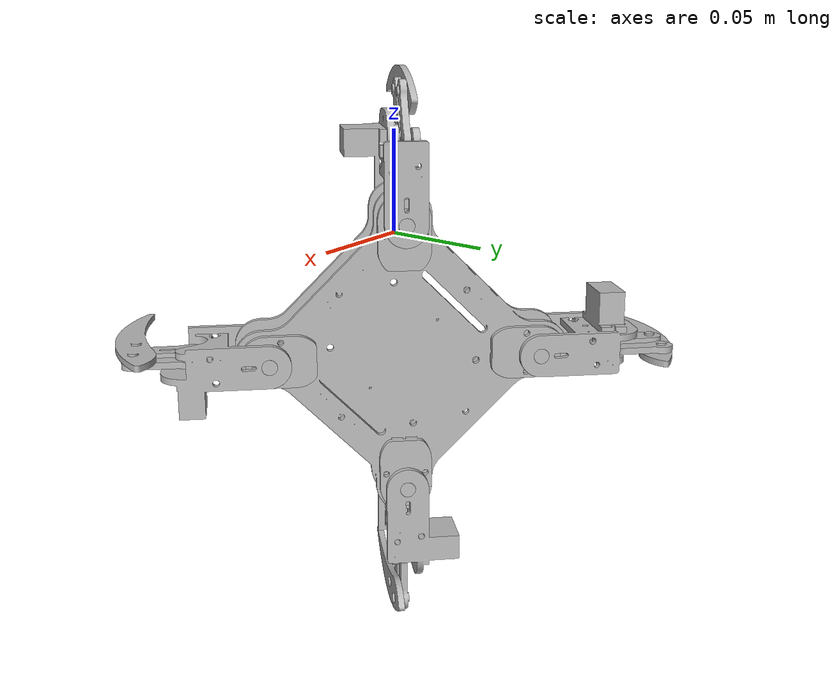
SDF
<?xml version="1.0" ?>
<sdf version="1.6">
	<model name="quadruped">
		<link name="quadruped_body">
			<self_collide>false</self_collide>
			<pose frame="">0.009054617693526444 0.010954550696905674 -0.05424821339808461 0.0 -0.0 0.0</pose>
			<inertial>
				<pose frame="">0.0 0.0 0.0 0 0 0</pose>
				<mass>0.0935834215818616</mass>
				<inertia>
					<ixx>0.00045713170993534694</ixx>
					<ixy>4.052495762946136e-05</ixy>
					<ixz>4.955015390422573e-05</ixz>
					<iyy>0.00045300290747356806</iyy>
					<iyz>6.061278298104605e-05</iyz>
					<izz>0.00013966679884245075</izz>
				</inertia>
			</inertial>
			<collision name="quadruped_body_collision">
				<geometry>
					<mesh>
						<uri>model://quadruped/meshes/CAD/quadruped_body.stl</uri>
						<scale>0.001 0.001 0.001</scale>
					</mesh>
				</geometry>
			</collision>
			<visual name="quadruped_body_visual">
				<geometry>
					<mesh>
						<uri>model://quadruped/meshes/CAD/quadruped_body.stl</uri>
						<scale>0.001 0.001 0.001</scale>
					</mesh>
				</geometry>
			</visual>
		</link>
		<link name="hip_servo_servo_mount_1">
			<self_collide>false</self_collide>
			<pose frame="">0.012890375611817766 0.014871195556350914 0.005375114470529469 0.0 -0.0 0.0</pose>
			<inertial>
				<pose frame="">0.0 0.0 0.0 0 0 0</pose>
				<mass>0.013632986173772196</mass>
				<inertia>
					<ixx>4.770315520251754e-06</ixx>
					<ixy>-2.8290059779284048e-06</ixy>
					<ixz>-9.790741818784368e-07</ixz>
					<iyy>4.022409904501968e-06</iyy>
					<iyz>-1.1249989284580146e-06</iyz>
					<izz>6.305847008255539e-06</izz>
				</inertia>
			</inertial>
			<collision name="hip_servo_servo_mount_1_collision">
				<geometry>
					<mesh>
						<uri>model://quadruped/meshes/CAD/hip_servo_servo_mount_1.stl</uri>
						<scale>0.001 0.001 0.001</scale>
					</mesh>
				</geometry>
			</collision>
			<visual name="hip_servo_servo_mount_1_visual">
				<geometry>
					<mesh>
						<uri>model://quadruped/meshes/CAD/hip_servo_servo_mount_1.stl</uri>
						<scale>0.001 0.001 0.001</scale>
					</mesh>
				</geometry>
			</visual>
		</link>
		<link name="hip_servo_servo_mount_2">
			<self_collide>false</self_collide>
			<pose frame="">-0.02620632332338188 0.059236573256571286 -0.053686074613440805 0.0 -0.0 0.0</pose>
			<inertial>
				<pose frame="">0.0 0.0 0.0 0 0 0</pose>
				<mass>0.013632986173875754</mass>
				<inertia>
					<ixx>8.827411643680424e-05</ixx>
					<ixy>2.1218168598137407e-05</ixy>
					<ixz>-1.9197254904825403e-05</ixz>
					<iyy>4.968616068294264e-05</iyy>
					<iyz>4.3334687147887475e-05</iyz>
					<izz>5.87768823095126e-05</izz>
				</inertia>
			</inertial>
			<collision name="hip_servo_servo_mount_2_collision">
				<geometry>
					<mesh>
						<uri>model://quadruped/meshes/CAD/hip_servo_servo_mount_2.stl</uri>
						<scale>0.001 0.001 0.001</scale>
					</mesh>
				</geometry>
			</collision>
			<visual name="hip_servo_servo_mount_2_visual">
				<geometry>
					<mesh>
						<uri>model://quadruped/meshes/CAD/hip_servo_servo_mount_2.stl</uri>
						<scale>0.001 0.001 0.001</scale>
					</mesh>
				</geometry>
			</visual>
		</link>
		<link name="hip_servo_servo_mount_3">
			<self_collide>false</self_collide>
			<pose frame="">0.018095238187563277 0.019844180002299153 -0.11277707275426496 0.0 -0.0 0.0</pose>
			<inertial>
				<pose frame="">0.0 0.0 0.0 0 0 0</pose>
				<mass>0.013632986173729874</mass>
				<inertia>
					<ixx>0.00018011641699017185</ixx>
					<ixy>-5.117862140018571e-06</ixy>
					<ixz>2.7865925192958343e-05</ixz>
					<iyy>0.0001792139882746836</iyy>
					<iyz>3.055380216979061e-05</iyz>
					<izz>1.0871770428207131e-05</izz>
				</inertia>
			</inertial>
			<collision name="hip_servo_servo_mount_3_collision">
				<geometry>
					<mesh>
						<uri>model://quadruped/meshes/CAD/hip_servo_servo_mount_3.stl</uri>
						<scale>0.001 0.001 0.001</scale>
					</mesh>
				</geometry>
			</collision>
			<visual name="hip_servo_servo_mount_3_visual">
				<geometry>
					<mesh>
						<uri>model://quadruped/meshes/CAD/hip_servo_servo_mount_3.stl</uri>
						<scale>0.001 0.001 0.001</scale>
					</mesh>
				</geometry>
			</visual>
		</link>
		<link name="hip_servo_servo_mount_4">
			<self_collide>false</self_collide>
			<pose frame="">0.05725081501790624 -0.024588009958613738 -0.0536269405918244 0.0 -0.0 0.0</pose>
			<inertial>
				<pose frame="">0.0 0.0 0.0 0 0 0</pose>
				<mass>0.013632986173875919</mass>
				<inertia>
					<ixx>4.847956572880788e-05</ixx>
					<ixy>1.924611994008176e-05</ixy>
					<ixz>4.183404976019748e-05</ixz>
					<iyy>8.50335336726935e-05</iyy>
					<iyz>-1.7992094998200576e-05</iyz>
					<izz>5.450269005330134e-05</izz>
				</inertia>
			</inertial>
			<collision name="hip_servo_servo_mount_4_collision">
				<geometry>
					<mesh>
						<uri>model://quadruped/meshes/CAD/hip_servo_servo_mount_4.stl</uri>
						<scale>0.001 0.001 0.001</scale>
					</mesh>
				</geometry>
			</collision>
			<visual name="hip_servo_servo_mount_4_visual">
				<geometry>
					<mesh>
						<uri>model://quadruped/meshes/CAD/hip_servo_servo_mount_4.stl</uri>
						<scale>0.001 0.001 0.001</scale>
					</mesh>
				</geometry>
			</visual>
		</link>
		<link name="thigh_1">
			<self_collide>false</self_collide>
			<pose frame="">0.004842947358440601 0.004025416538531608 0.03352698125834973 0.0 -0.0 0.0</pose>
			<inertial>
				<pose frame="">0.0 0.0 0.0 0 0 0</pose>
				<mass>0.05521421604479793</mass>
				<inertia>
					<ixx>8.12142496090186e-05</ixx>
					<ixy>-4.289284220261144e-06</ixy>
					<ixz>-1.2997402871583983e-05</ixz>
					<iyy>8.197817458363166e-05</iyy>
					<iyz>-8.580936505269728e-06</iyz>
					<izz>1.7016506462837022e-05</izz>
				</inertia>
			</inertial>
			<collision name="thigh_1_collision">
				<geometry>
					<mesh>
						<uri>model://quadruped/meshes/CAD/thigh_1.stl</uri>
						<scale>0.001 0.001 0.001</scale>
					</mesh>
				</geometry>
			</collision>
			<visual name="thigh_1_visual">
				<geometry>
					<mesh>
						<uri>model://quadruped/meshes/CAD/thigh_1.stl</uri>
						<scale>0.001 0.001 0.001</scale>
					</mesh>
				</geometry>
			</visual>
		</link>
		<link name="thigh_2">
			<self_collide>false</self_collide>
			<pose frame="">-0.054910586133422846 0.07145614961108687 -0.052393391524586094 0.0 -0.0 0.0</pose>
			<inertial>
				<pose frame="">0.0 0.0 0.0 0 0 0</pose>
				<mass>0.05521421601019442</mass>
				<inertia>
					<ixx>0.00045206492163734534</ixx>
					<ixy>0.00021641294327883327</ixy>
					<ixz>-0.00015776301586801415</ixz>
					<iyy>0.0003295821695272492</iyy>
					<iyz>0.00020462149987292915</iyz>
					<izz>0.00046999421699915367</izz>
				</inertia>
			</inertial>
			<collision name="thigh_2_collision">
				<geometry>
					<mesh>
						<uri>model://quadruped/meshes/CAD/thigh_2.stl</uri>
						<scale>0.001 0.001 0.001</scale>
					</mesh>
				</geometry>
			</collision>
			<visual name="thigh_2_visual">
				<geometry>
					<mesh>
						<uri>model://quadruped/meshes/CAD/thigh_2.stl</uri>
						<scale>0.001 0.001 0.001</scale>
					</mesh>
				</geometry>
			</visual>
		</link>
		<link name="thigh_3">
			<self_collide>false</self_collide>
			<pose frame="">0.00970961671144424 0.014320953108746983 -0.14234224145240565 0.0 -0.0 0.0</pose>
			<inertial>
				<pose frame="">0.0 0.0 0.0 0 0 0</pose>
				<mass>0.055214216042986965</mass>
				<inertia>
					<ixx>0.0011484291742198435</ixx>
					<ixy>-1.1336606396544214e-05</ixy>
					<ixz>7.744122923151141e-05</ixz>
					<iyy>0.0011415143913118115</iyy>
					<iyz>0.00011651204828828122</iyz>
					<izz>3.2241627968361466e-05</izz>
				</inertia>
			</inertial>
			<collision name="thigh_3_collision">
				<geometry>
					<mesh>
						<uri>model://quadruped/meshes/CAD/thigh_3.stl</uri>
						<scale>0.001 0.001 0.001</scale>
					</mesh>
				</geometry>
			</collision>
			<visual name="thigh_3_visual">
				<geometry>
					<mesh>
						<uri>model://quadruped/meshes/CAD/thigh_3.stl</uri>
						<scale>0.001 0.001 0.001</scale>
					</mesh>
				</geometry>
			</visual>
		</link>
		<link name="thigh_4">
			<self_collide>false</self_collide>
			<pose frame="">0.06951831849474113 -0.053171881524671026 -0.05634433518873474 0.0 -0.0 0.0</pose>
			<inertial>
				<pose frame="">0.0 0.0 0.0 0 0 0</pose>
				<mass>0.05521421601038229</mass>
				<inertia>
					<ixx>0.0003426437411902573</ixx>
					<ixy>0.0002038590127636044</ixy>
					<ixz>0.00021745761572754168</ixz>
					<iyy>0.0004609166183581892</iyy>
					<iyz>-0.00016678770737829675</iyz>
					<izz>0.00044460338465351673</izz>
				</inertia>
			</inertial>
			<collision name="thigh_4_collision">
				<geometry>
					<mesh>
						<uri>model://quadruped/meshes/CAD/thigh_4.stl</uri>
						<scale>0.001 0.001 0.001</scale>
					</mesh>
				</geometry>
			</collision>
			<visual name="thigh_4_visual">
				<geometry>
					<mesh>
						<uri>model://quadruped/meshes/CAD/thigh_4.stl</uri>
						<scale>0.001 0.001 0.001</scale>
					</mesh>
				</geometry>
			</visual>
		</link>
		<link name="servo_arm_1">
			<self_collide>false</self_collide>
			<pose frame="">-0.0038155932955904475 -0.0001595397539787395 0.057327534866425174 0.0 -0.0 0.0</pose>
			<inertial>
				<pose frame="">0.0 0.0 0.0 0 0 0</pose>
				<mass>0.0022438611558734008</mass>
				<inertia>
					<ixx>7.628003161628189e-06</ixx>
					<ixy>-5.708298101394665e-08</ixy>
					<ixz>5.719690192606934e-07</ixz>
					<iyy>7.656776136791976e-06</iyy>
					<iyz>1.0553943572059742e-07</iyz>
					<izz>1.4895110505216374e-07</izz>
				</inertia>
			</inertial>
			<collision name="servo_arm_1_collision">
				<geometry>
					<mesh>
						<uri>model://quadruped/meshes/CAD/servo_arm_1.stl</uri>
						<scale>0.001 0.001 0.001</scale>
					</mesh>
				</geometry>
			</collision>
			<visual name="servo_arm_1_visual">
				<geometry>
					<mesh>
						<uri>model://quadruped/meshes/CAD/servo_arm_1.stl</uri>
						<scale>0.001 0.001 0.001</scale>
					</mesh>
				</geometry>
			</visual>
		</link>
		<link name="leg_parallel_linkage_1">
			<self_collide>false</self_collide>
			<pose frame="">0.008722875425727018 0.012470639676602247 0.058378072879620053 0.0 -0.0 0.0</pose>
			<inertial>
				<pose frame="">0.0 0.0 0.0 0 0 0</pose>
				<mass>0.007982467116690367</mass>
				<inertia>
					<ixx>2.9231818847212213e-05</ixx>
					<ixy>-1.0326589470064662e-06</ixy>
					<ixz>-3.7867951165163097e-06</ixz>
					<iyy>2.8595493348213505e-05</iyy>
					<iyz>-5.530824270769201e-06</iyz>
					<izz>2.192019385321037e-06</izz>
				</inertia>
			</inertial>
			<collision name="leg_parallel_linkage_1_collision">
				<geometry>
					<mesh>
						<uri>model://quadruped/meshes/CAD/leg_parallel_linkage_1.stl</uri>
						<scale>0.001 0.001 0.001</scale>
					</mesh>
				</geometry>
			</collision>
			<visual name="leg_parallel_linkage_1_visual">
				<geometry>
					<mesh>
						<uri>model://quadruped/meshes/CAD/leg_parallel_linkage_1.stl</uri>
						<scale>0.001 0.001 0.001</scale>
					</mesh>
				</geometry>
			</visual>
		</link>
		<link name="rev_1">
			<self_collide>false</self_collide>
			<pose frame="">-0.014956736523691297 -0.006505495167599255 0.06774557776623814 0.0 -0.0 0.0</pose>
			<inertial>
				<pose frame="">0.0 0.0 0.0 0 0 0</pose>
				<mass>0.005624431830191916</mass>
				<inertia>
					<ixx>2.7664699935707817e-05</ixx>
					<ixy>-2.0546124685621124e-06</ixy>
					<ixz>5.702763789707963e-06</ixz>
					<iyy>2.868078623704316e-05</iyy>
					<iyz>2.48239388023016e-06</iyz>
					<izz>4.521308604942144e-06</izz>
				</inertia>
			</inertial>
			<collision name="rev_1_collision">
				<geometry>
					<mesh>
						<uri>model://quadruped/meshes/CAD/rev_1.stl</uri>
						<scale>0.001 0.001 0.001</scale>
					</mesh>
				</geometry>
			</collision>
			<visual name="rev_1_visual">
				<geometry>
					<mesh>
						<uri>model://quadruped/meshes/CAD/rev_1.stl</uri>
						<scale>0.001 0.001 0.001</scale>
					</mesh>
				</geometry>
			</visual>
		</link>
		<link name="leg_parallel_linkage_2">
			<self_collide>false</self_collide>
			<pose frame="">-0.0613832306482158 0.10207701283128444 -0.05461715389430609 0.0 -0.0 0.0</pose>
			<inertial>
				<pose frame="">0.0 0.0 0.0 0 0 0</pose>
				<mass>0.007982467055746728</mass>
				<inertia>
					<ixx>0.00010744877827830509</ixx>
					<ixy>5.0434906825768446e-05</ixy>
					<ixz>-2.6762834491072075e-05</ixz>
					<iyy>5.439145313859798e-05</iyy>
					<iyz>4.450036414485024e-05</iyz>
					<izz>0.00011420136152249155</izz>
				</inertia>
			</inertial>
			<collision name="leg_parallel_linkage_2_collision">
				<geometry>
					<mesh>
						<uri>model://quadruped/meshes/CAD/leg_parallel_linkage_2.stl</uri>
						<scale>0.001 0.001 0.001</scale>
					</mesh>
				</geometry>
			</collision>
			<visual name="leg_parallel_linkage_2_visual">
				<geometry>
					<mesh>
						<uri>model://quadruped/meshes/CAD/leg_parallel_linkage_2.stl</uri>
						<scale>0.001 0.001 0.001</scale>
					</mesh>
				</geometry>
			</visual>
		</link>
		<link name="servo_arm_2">
			<self_collide>false</self_collide>
			<pose frame="">-0.07403096483651968 0.08959456706172894 -0.055596059476907586 0.0 -0.0 0.0</pose>
			<inertial>
				<pose frame="">0.0 0.0 0.0 0 0 0</pose>
				<mass>0.00224386113073181</mass>
				<inertia>
					<ixx>2.5096354128403615e-05</ixx>
					<ixy>1.5006939654397603e-05</ixy>
					<ixz>-9.23425417836217e-06</ixz>
					<iyy>1.9396706507812125e-05</iyy>
					<iyz>1.1173600946845037e-05</iyz>
					<izz>3.06168814488621e-05</izz>
				</inertia>
			</inertial>
			<collision name="servo_arm_2_collision">
				<geometry>
					<mesh>
						<uri>model://quadruped/meshes/CAD/servo_arm_2.stl</uri>
						<scale>0.001 0.001 0.001</scale>
					</mesh>
				</geometry>
			</collision>
			<visual name="servo_arm_2_visual">
				<geometry>
					<mesh>
						<uri>model://quadruped/meshes/CAD/servo_arm_2.stl</uri>
						<scale>0.001 0.001 0.001</scale>
					</mesh>
				</geometry>
			</visual>
		</link>
		<link name="rev_2">
			<self_collide>false</self_collide>
			<pose frame="">-0.087048114238072 0.09502142118027308 -0.05929945349265844 0.0 -0.0 0.0</pose>
			<inertial>
				<pose frame="">0.0 0.0 0.0 0 0 0</pose>
				<mass>0.005624431830191929</mass>
				<inertia>
					<ixx>7.193152040041056e-05</ixx>
					<ixy>4.5080426226688786e-05</ixy>
					<ixz>-2.9163908227444e-05</ixz>
					<iyy>6.416538525055506e-05</iyy>
					<iyz>3.157756091344109e-05</iyz>
					<izz>9.651057777817644e-05</izz>
				</inertia>
			</inertial>
			<collision name="rev_2_collision">
				<geometry>
					<mesh>
						<uri>model://quadruped/meshes/CAD/rev_2.stl</uri>
						<scale>0.001 0.001 0.001</scale>
					</mesh>
				</geometry>
			</collision>
			<visual name="rev_2_visual">
				<geometry>
					<mesh>
						<uri>model://quadruped/meshes/CAD/rev_2.stl</uri>
						<scale>0.001 0.001 0.001</scale>
					</mesh>
				</geometry>
			</visual>
		</link>
		<link name="leg_parallel_linkage_3">
			<self_collide>false</self_collide>
			<pose frame="">0.025313599222881775 0.02526480371269189 -0.16751755105470573 0.0 -0.0 0.0</pose>
			<inertial>
				<pose frame="">0.0 0.0 0.0 0 0 0</pose>
				<mass>0.007982467096390607</mass>
				<inertia>
					<ixx>0.0002300237532206378</ixx>
					<ixy>-5.131107872748828e-06</ixy>
					<ixz>3.3884042916457697e-05</ixz>
					<iyy>0.00023004332571709767</iyy>
					<iyz>3.38226651292879e-05</iyz>
					<izz>1.0276824178552738e-05</izz>
				</inertia>
			</inertial>
			<collision name="leg_parallel_linkage_3_collision">
				<geometry>
					<mesh>
						<uri>model://quadruped/meshes/CAD/leg_parallel_linkage_3.stl</uri>
						<scale>0.001 0.001 0.001</scale>
					</mesh>
				</geometry>
			</collision>
			<visual name="leg_parallel_linkage_3_visual">
				<geometry>
					<mesh>
						<uri>model://quadruped/meshes/CAD/leg_parallel_linkage_3.stl</uri>
						<scale>0.001 0.001 0.001</scale>
					</mesh>
				</geometry>
			</visual>
		</link>
		<link name="servo_arm_3">
			<self_collide>false</self_collide>
			<pose frame="">0.012657356645934717 0.01280910745801404 -0.16867939764379017 0.0 -0.0 0.0</pose>
			<inertial>
				<pose frame="">0.0 0.0 0.0 0 0 0</pose>
				<mass>0.0022438611484091367</mass>
				<inertia>
					<ixx>6.450568659045674e-05</ixx>
					<ixy>-3.7781764429265974e-07</ixy>
					<ixz>4.798268887463355e-06</ixz>
					<iyy>6.449672515627232e-05</iyy>
					<iyz>4.8607265678922885e-06</iyz>
					<izz>7.604898387011911e-07</izz>
				</inertia>
			</inertial>
			<collision name="servo_arm_3_collision">
				<geometry>
					<mesh>
						<uri>model://quadruped/meshes/CAD/servo_arm_3.stl</uri>
						<scale>0.001 0.001 0.001</scale>
					</mesh>
				</geometry>
			</collision>
			<visual name="servo_arm_3_visual">
				<geometry>
					<mesh>
						<uri>model://quadruped/meshes/CAD/servo_arm_3.stl</uri>
						<scale>0.001 0.001 0.001</scale>
					</mesh>
				</geometry>
			</visual>
		</link>
		<link name="rev_3">
			<self_collide>false</self_collide>
			<pose frame="">0.011862439649475386 0.007264037751315852 -0.18201299683605737 0.0 -0.0 0.0</pose>
			<inertial>
				<pose frame="">0.0 0.0 0.0 0 0 0</pose>
				<mass>0.005624431830191915</mass>
				<inertia>
					<ixx>0.00018824726204434965</ixx>
					<ixy>-1.9683369115967987e-06</ixy>
					<ixz>1.1882190102463169e-05</ixz>
					<iyy>0.00018877173426364797</iyy>
					<iyz>7.177153678524456e-06</iyz>
					<izz>4.066118038621946e-06</izz>
				</inertia>
			</inertial>
			<collision name="rev_3_collision">
				<geometry>
					<mesh>
						<uri>model://quadruped/meshes/CAD/rev_3.stl</uri>
						<scale>0.001 0.001 0.001</scale>
					</mesh>
				</geometry>
			</collision>
			<visual name="rev_3_visual">
				<geometry>
					<mesh>
						<uri>model://quadruped/meshes/CAD/rev_3.stl</uri>
						<scale>0.001 0.001 0.001</scale>
					</mesh>
				</geometry>
			</visual>
		</link>
		<link name="leg_parallel_linkage_4">
			<self_collide>false</self_collide>
			<pose frame="">0.10008155633799799 -0.05981501205053356 -0.052063302584425895 0.0 -0.0 0.0</pose>
			<inertial>
				<pose frame="">0.0 0.0 0.0 0 0 0</pose>
				<mass>0.007982467055742806</mass>
				<inertia>
					<ixx>5.0680803262747654e-05</ixx>
					<ixy>4.820479141742971e-05</ixy>
					<ixz>4.1593481171961155e-05</ixz>
					<iyy>0.00010207254897915004</iyy>
					<iyz>-2.4863156929063334e-05</iyz>
					<izz>0.00010946404474064915</izz>
				</inertia>
			</inertial>
			<collision name="leg_parallel_linkage_4_collision">
				<geometry>
					<mesh>
						<uri>model://quadruped/meshes/CAD/leg_parallel_linkage_4.stl</uri>
						<scale>0.001 0.001 0.001</scale>
					</mesh>
				</geometry>
			</collision>
			<visual name="leg_parallel_linkage_4_visual">
				<geometry>
					<mesh>
						<uri>model://quadruped/meshes/CAD/leg_parallel_linkage_4.stl</uri>
						<scale>0.001 0.001 0.001</scale>
					</mesh>
				</geometry>
			</visual>
		</link>
		<link name="servo_arm_4">
			<self_collide>false</self_collide>
			<pose frame="">0.08755557564706509 -0.07239962553009151 -0.05324834673514424 0.0 -0.0 0.0</pose>
			<inertial>
				<pose frame="">0.0 0.0 0.0 0 0 0</pose>
				<mass>0.002243861130718795</mass>
				<inertia>
					<ixx>1.8281453799505345e-05</ixx>
					<ixy>1.4347932097826742e-05</ixy>
					<ixz>1.046279491938815e-05</ixz>
					<iyy>2.3718344534274156e-05</iyy>
					<iyz>-8.654305170783587e-06</iyz>
					<izz>2.927035429133502e-05</izz>
				</inertia>
			</inertial>
			<collision name="servo_arm_4_collision">
				<geometry>
					<mesh>
						<uri>model://quadruped/meshes/CAD/servo_arm_4.stl</uri>
						<scale>0.001 0.001 0.001</scale>
					</mesh>
				</geometry>
			</collision>
			<visual name="servo_arm_4_visual">
				<geometry>
					<mesh>
						<uri>model://quadruped/meshes/CAD/servo_arm_4.stl</uri>
						<scale>0.001 0.001 0.001</scale>
					</mesh>
				</geometry>
			</visual>
		</link>
		<link name="rev_4">
			<self_collide>false</self_collide>
			<pose frame="">0.09286785429371303 -0.08550958091810766 -0.05021434066417976 0.0 -0.0 0.0</pose>
			<inertial>
				<pose frame="">0.0 0.0 0.0 0 0 0</pose>
				<mass>0.005624431830191924</mass>
				<inertia>
					<ixx>5.706515076577209e-05</ixx>
					<ixy>4.322185594241186e-05</ixy>
					<ixz>2.6101901201254602e-05</ixz>
					<iyy>6.407279821793503e-05</iyy>
					<iyz>-2.4293476218170423e-05</iyz>
					<izz>9.273946707735293e-05</izz>
				</inertia>
			</inertial>
			<collision name="rev_4_collision">
				<geometry>
					<mesh>
						<uri>model://quadruped/meshes/CAD/rev_4.stl</uri>
						<scale>0.001 0.001 0.001</scale>
					</mesh>
				</geometry>
			</collision>
			<visual name="rev_4_visual">
				<geometry>
					<mesh>
						<uri>model://quadruped/meshes/CAD/rev_4.stl</uri>
						<scale>0.001 0.001 0.001</scale>
					</mesh>
				</geometry>
			</visual>
		</link>
		<joint name="servo_body_1" type="fixed">
			<parent>quadruped_body</parent>
			<child>hip_servo_servo_mount_1</child>
			<pose frame="">-0.01467974375814511 -0.014607744585693262 0.003774286589272561 0 0 0</pose>
		</joint>
		<joint name="servo_body_2" type="fixed">
			<parent>quadruped_body</parent>
			<child>hip_servo_servo_mount_2</child>
			<pose frame="">-0.018005185791200112 -0.010834195148664847 -0.0012489267097010347 0 0 0</pose>
		</joint>
		<joint name="servo_body_3" type="fixed">
			<parent>quadruped_body</parent>
			<child>hip_servo_servo_mount_3</child>
			<pose frame="">-0.014238059151254218 -0.014185050759453997 -0.006260057866255124 0 0 0</pose>
		</joint>
		<joint name="servo_body_4" type="fixed">
			<parent>quadruped_body</parent>
			<child>hip_servo_servo_mount_4</child>
			<pose frame="">-0.010912617101154964 -0.017958600205517428 -0.001236844567208948 0 0 0</pose>
		</joint>
		<joint name="hip_drive_1" type="revolute">
			<parent>hip_servo_servo_mount_1</parent>
			<child>thigh_1</child>
			<pose frame="">0.019124243226562438 0.021883251233004386 -0.02216354913384417 0 0 0</pose>
			<axis>
				<xyz>0.7073257189907829 0.7042680507738324 0.06080164400240357</xyz>
				<limit>
					<lower>-1.5707963267948966</lower>
					<upper>1.5707963267948966</upper>
				</limit>
				<use_parent_model_frame>0</use_parent_model_frame>
			</axis>
		</joint>
		<joint name="hip_drive_2" type="revolute">
			<parent>hip_servo_servo_mount_2</parent>
			<child>thigh_2</child>
			<pose frame="">0.03645563575017118 0.002591445297697916 -0.00032757873385219405 0 0 0</pose>
			<axis>
				<xyz>0.7073257189907826 0.7042680507738329 0.060801644002403746</xyz>
				<limit>
					<lower>-1.5707963267948966</lower>
					<upper>1.5707963267948966</upper>
				</limit>
				<use_parent_model_frame>0</use_parent_model_frame>
			</axis>
		</joint>
		<joint name="hip_drive_3" type="revolute">
			<parent>hip_servo_servo_mount_3</parent>
			<child>thigh_3</child>
			<pose frame="">0.019904121056195212 0.01698339293497652 0.025519141896589072 0 0 0</pose>
			<axis>
				<xyz>0.707325718990783 0.7042680507738329 0.06080164400240372</xyz>
				<limit>
					<lower>-1.5707963267948966</lower>
					<upper>1.5707963267948966</upper>
				</limit>
				<use_parent_model_frame>0</use_parent_model_frame>
			</axis>
		</joint>
		<joint name="hip_drive_4" type="revolute">
			<parent>hip_servo_servo_mount_4</parent>
			<child>thigh_4</child>
			<pose frame="">0.002576438153340588 0.0362704881614182 0.003694581094404912 0 0 0</pose>
			<axis>
				<xyz>0.7073257189907834 0.7042680507738325 0.06080164400240374</xyz>
				<limit>
					<lower>-1.5707963267948966</lower>
					<upper>1.5707963267948966</upper>
				</limit>
				<use_parent_model_frame>0</use_parent_model_frame>
			</axis>
		</joint>
		<joint name="knee_drive_1" type="revolute">
			<parent>thigh_1</parent>
			<child>servo_arm_1</child>
			<pose frame="">0.004282932026332 0.006699960549899786 -0.010833691639676025 0 0 0</pose>
			<axis>
				<xyz>-0.7055286400861118 0.7086806602216479 -0.0010294882473420707</xyz>
				<limit>
					<lower>-0.9599310885968813</lower>
					<upper>0.9599310885968813</upper>
				</limit>
				<use_parent_model_frame>0</use_parent_model_frame>
			</axis>
		</joint>
		<joint name="knee_drive_2" type="revolute">
			<parent>thigh_2</parent>
			<child>servo_arm_2</child>
			<pose frame="">0.00976330024829137 -0.009078184525388108 -0.0016930412630308568 0 0 0</pose>
			<axis>
				<xyz>0.04395680036480673 0.042025662415819745 -0.9981491088009847</xyz>
				<limit>
					<lower>-0.9599310885968813</lower>
					<upper>0.9599310885968813</upper>
				</limit>
				<use_parent_model_frame>0</use_parent_model_frame>
			</axis>
		</joint>
		<joint name="knee_drive_3" type="revolute">
			<parent>thigh_3</parent>
			<child>servo_arm_3</child>
			<pose frame="">0.0006724167217587618 -0.001759158136976331 0.01330620432525139 0 0 0</pose>
			<axis>
				<xyz>0.705519533657749 -0.7086893949019422 0.0012366005295526845</xyz>
				<limit>
					<lower>-0.9599310885968813</lower>
					<upper>0.9599310885968813</upper>
				</limit>
				<use_parent_model_frame>0</use_parent_model_frame>
			</axis>
		</joint>
		<joint name="knee_drive_4" type="revolute">
			<parent>thigh_4</parent>
			<child>servo_arm_4</child>
			<pose frame="">-0.009435511265804912 0.0094120354732717 0.0017281736851306473 0 0 0</pose>
			<axis>
				<xyz>-0.04360682783998562 -0.0423771965289127 0.9981495968942147</xyz>
				<limit>
					<lower>-0.9599310885968813</lower>
					<upper>0.9599310885968813</upper>
				</limit>
				<use_parent_model_frame>0</use_parent_model_frame>
			</axis>
		</joint>
		<joint name="body_leg_free_1" type="revolute">
			<parent>quadruped_body</parent>
			<child>thigh_1</child>
			<pose frame="">-0.008886916234051068 -0.006006819979715552 -0.024571385438805358 0 0 0</pose>
			<axis>
				<xyz>0.7073257189907839 0.7042680507738336 0.06080164400240378</xyz>
				<limit>
					<lower>0.0</lower>
					<upper>0.0</upper>
				</limit>
				<use_parent_model_frame>0</use_parent_model_frame>
			</axis>
		</joint>
		<joint name="body_leg_free_2" type="revolute">
			<parent>quadruped_body</parent>
			<child>thigh_2</child>
			<pose frame="">0.008444476289557726 -0.025298625915022032 -0.0027354150388134 0 0 0</pose>
			<axis>
				<xyz>0.7073257189907839 0.7042680507738336 0.06080164400240378</xyz>
				<limit>
					<lower>0.0</lower>
					<upper>0.0</upper>
				</limit>
				<use_parent_model_frame>0</use_parent_model_frame>
			</axis>
		</joint>
		<joint name="body_leg_free_3" type="revolute">
			<parent>quadruped_body</parent>
			<child>thigh_3</child>
			<pose frame="">-0.008107038404418305 -0.010906678277743423 0.023111305591627895 0 0 0</pose>
			<axis>
				<xyz>0.7073257189907839 0.7042680507738336 0.06080164400240378</xyz>
				<limit>
					<lower>0.0</lower>
					<upper>0.0</upper>
				</limit>
				<use_parent_model_frame>0</use_parent_model_frame>
			</axis>
		</joint>
		<joint name="body_leg_free_4" type="revolute">
			<parent>quadruped_body</parent>
			<child>thigh_4</child>
			<pose frame="">-0.02543472130727297 0.008380416948698262 0.0012867447894437233 0 0 0</pose>
			<axis>
				<xyz>0.7073257189907839 0.7042680507738336 0.06080164400240378</xyz>
				<limit>
					<lower>0.0</lower>
					<upper>0.0</upper>
				</limit>
				<use_parent_model_frame>0</use_parent_model_frame>
			</axis>
		</joint>
		<joint name="servo_arm_rev_1" type="revolute">
			<parent>servo_arm_1</parent>
			<child>rev_1</child>
			<pose frame="">0.0048823082538115474 0.002581851749461532 -0.0005243485909997503 0 0 0</pose>
			<axis>
				<xyz>-0.705528640086112 0.7086806602216473 -0.0010294882473423075</xyz>
				<limit>
					<lower>0.0</lower>
					<upper>0.0</upper>
				</limit>
				<use_parent_model_frame>0</use_parent_model_frame>
			</axis>
		</joint>
		<joint name="rev_leg_parallel_linkage_1" type="revolute">
			<parent>rev_1</parent>
			<child>leg_parallel_linkage_1</child>
			<pose frame="">-0.006174305137620013 -0.0038257745135149034 0.009981803698455964 0 0 0</pose>
			<axis>
				<xyz>0.7055288622879796 -0.7086804463438486 0.001024425943430311</xyz>
				<limit>
					<lower>0.0</lower>
					<upper>0.0</upper>
				</limit>
				<use_parent_model_frame>0</use_parent_model_frame>
			</axis>
		</joint>
		<joint name="linkage_plate_1" type="">
			<parent>leg_parallel_linkage_1</parent>
			<child>thigh_1</child>
			<pose frame="">0.008169693682831993 0.015006203732608294 0.014027401784915626 0 0 0</pose>
		</joint>
		<joint name="servo_arm_rev_2" type="revolute">
			<parent>servo_arm_2</parent>
			<child>rev_2</child>
			<pose frame="">0.004244061466140607 0.003006272238304657 0.0019308296889008238 0 0 0</pose>
			<axis>
				<xyz>-0.04395680036480672 -0.042025662415819676 0.9981491088009847</xyz>
				<limit>
					<lower>0.0</lower>
					<upper>0.0</upper>
				</limit>
				<use_parent_model_frame>0</use_parent_model_frame>
			</axis>
		</joint>
		<joint name="rev_leg_parallel_linkage_2" type="revolute">
			<parent>rev_2</parent>
			<child>leg_parallel_linkage_2</child>
			<pose frame="">-0.008785148619814364 0.008511170526218984 -0.0016661745320500554 0 0 0</pose>
			<axis>
				<xyz>-0.04395322218682839 -0.04202925666703037 0.9981491150341257</xyz>
				<limit>
					<lower>0.0</lower>
					<upper>0.0</upper>
				</limit>
				<use_parent_model_frame>0</use_parent_model_frame>
			</axis>
		</joint>
		<joint name="linkage_plate_2" type="">
			<parent>leg_parallel_linkage_2</parent>
			<child>thigh_2</child>
			<pose frame="">0.0032001020579447647 0.02153797579300435 -0.0038174840088388874 0 0 0</pose>
		</joint>
		<joint name="servo_arm_rev_3" type="revolute">
			<parent>servo_arm_3</parent>
			<child>rev_3</child>
			<pose frame="">0.0025267631515324875 0.004795474886833165 0.0011818300943742344 0 0 0</pose>
			<axis>
				<xyz>-0.7055195336577517 0.7086893949019445 -0.0012366005295526693</xyz>
				<limit>
					<lower>0.0</lower>
					<upper>0.0</upper>
				</limit>
				<use_parent_model_frame>0</use_parent_model_frame>
			</axis>
		</joint>
		<joint name="rev_leg_parallel_linkage_3" type="revolute">
			<parent>rev_3</parent>
			<child>leg_parallel_linkage_3</child>
			<pose frame="">0.0017002177202256742 -0.0006352205400598532 -0.01221068188095039 0 0 0</pose>
			<axis>
				<xyz>-0.7055197566020837 0.7086891817699308 -0.0012315382268389883</xyz>
				<limit>
					<lower>0.0</lower>
					<upper>0.0</upper>
				</limit>
				<use_parent_model_frame>0</use_parent_model_frame>
			</axis>
		</joint>
		<joint name="linkage_plate_3" type="">
			<parent>leg_parallel_linkage_3</parent>
			<child>thigh_3</child>
			<pose frame="">0.016164062982985863 0.00921852555552542 -0.011934826896065119 0 0 0</pose>
		</joint>
		<joint name="servo_arm_rev_4" type="revolute">
			<parent>servo_arm_4</parent>
			<child>rev_4</child>
			<pose frame="">0.0031625281387169402 0.004370671959217045 -0.001293629074534346 0 0 0</pose>
			<axis>
				<xyz>0.0436032495518704 0.04238079067395309 -0.9981496006162475</xyz>
				<limit>
					<lower>0.0</lower>
					<upper>0.0</upper>
				</limit>
				<use_parent_model_frame>0</use_parent_model_frame>
			</axis>
		</joint>
		<joint name="rev_leg_parallel_linkage_4" type="revolute">
			<parent>rev_4</parent>
			<child>leg_parallel_linkage_4</child>
			<pose frame="">0.008561821792450549 -0.008740631872575424 0.001640597338954981 0 0 0</pose>
			<axis>
				<xyz>0.04360324955187009 0.04238079067395281 -0.9981496006162387</xyz>
				<limit>
					<lower>0.0</lower>
					<upper>0.0</upper>
				</limit>
				<use_parent_model_frame>0</use_parent_model_frame>
			</axis>
		</joint>
		<joint name="linkage_plate_4" type="">
			<parent>leg_parallel_linkage_4</parent>
			<child>thigh_4</child>
			<pose frame="">0.021133767937719358 0.0026872939071444168 0.0059024813836571965 0 0 0</pose>
		</joint>
		<plugin filename="libcardsflow_gazebo_plugin.so" name="cardsflow_gazebo_plugin"/>
	</model>
</sdf>
